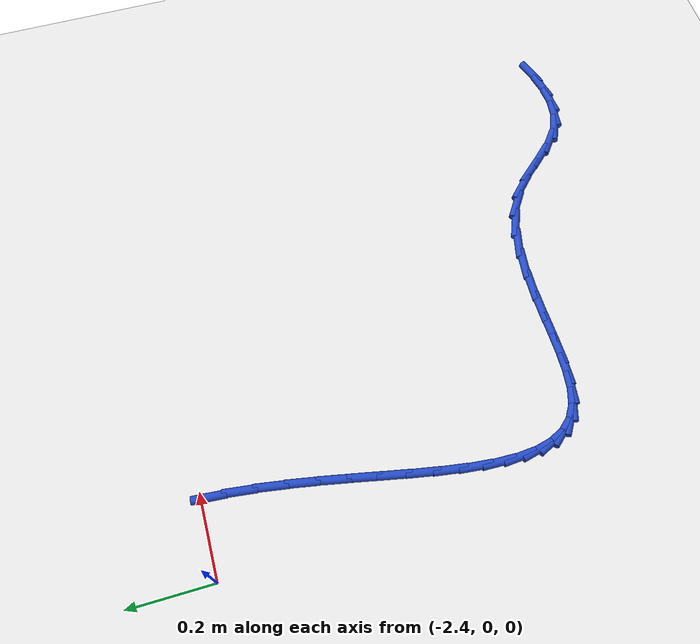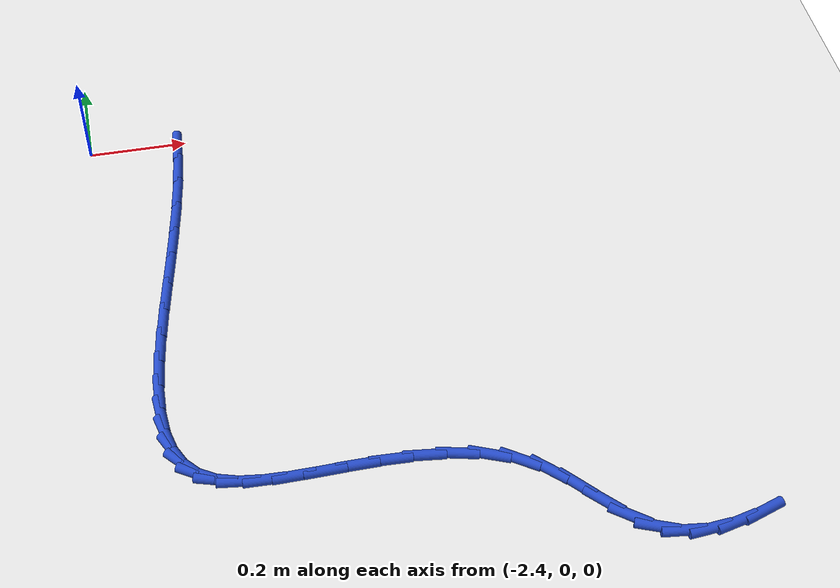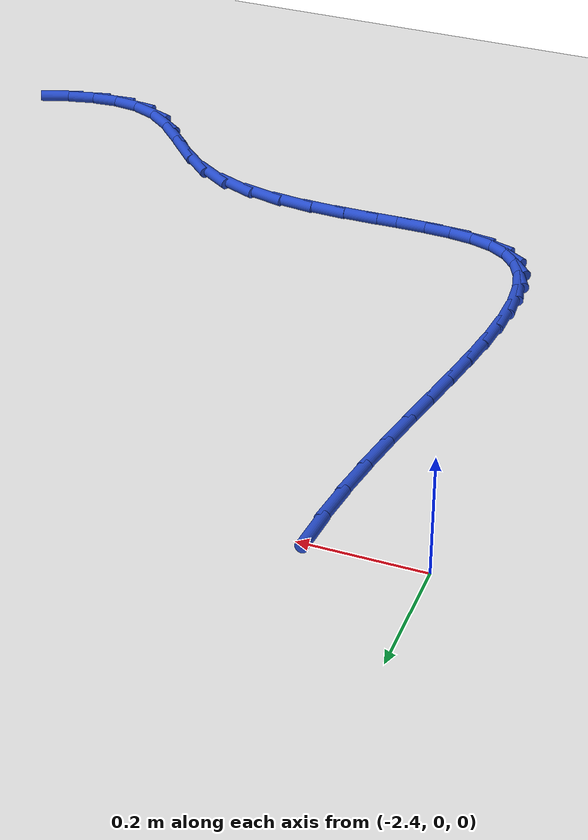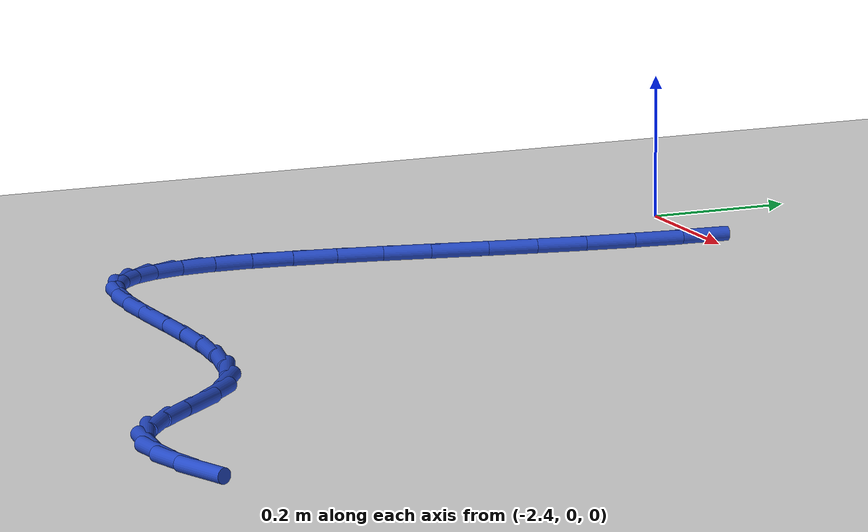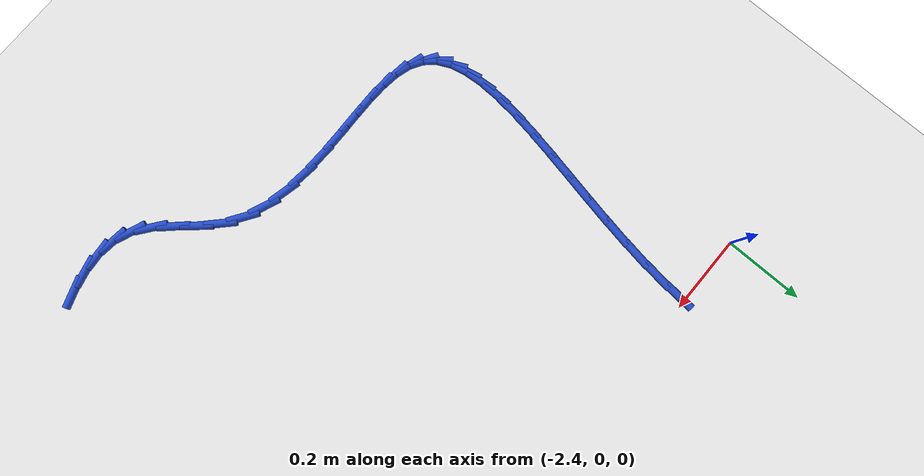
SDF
<sdf version="1.6">
 <world name="default">
  <model name="ground_plane">
   <static>1</static>
   <link name="link">
    <collision name="collision">
     <geometry><plane><normal>0 0 1</normal><size>100 100</size></plane></geometry>
     <surface><friction><ode><mu>100</mu><mu2>50</mu2></ode></friction></surface>
    </collision>
    <visual name="visual">
     <cast_shadows>0</cast_shadows>
     <geometry><plane><normal>0 0 1</normal><size>100 100</size></plane></geometry>
     <material>
      <script><uri>file://media/materials/scripts/gazebo.material</uri><name>Gazebo/WhiteGlow</name></script>
     </material>
    </visual>
   </link>
  </model>
  <model name="line">
   <link name="link_71">
    <pose>-2.2189843516203163 -0.018687217373262205 0.01 0 1.57 1.4930124723782636</pose>
    <collision name="collision">
     <geometry><cylinder><radius>0.01</radius><length>0.08</length></cylinder></geometry>
    </collision>
    <visual name="visual">
     <material>
      <script><name>Gazebo/Blue</name><uri>file://media/materials/scripts/gazebo.material</uri></script>
     </material>
     <geometry><cylinder><radius>0.01</radius><length>0.08</length></cylinder></geometry>
    </visual>
   </link>
   <link name="link_72">
    <pose>-2.2243129541585684 -0.0870542537359261 0.01 0 1.57 1.4486768519576145</pose>
    <collision name="collision">
     <geometry><cylinder><radius>0.01</radius><length>0.08</length></cylinder></geometry>
    </collision>
    <visual name="visual">
     <material>
      <script><name>Gazebo/Blue</name><uri>file://media/materials/scripts/gazebo.material</uri></script>
     </material>
     <geometry><cylinder><radius>0.01</radius><length>0.08</length></cylinder></geometry>
    </visual>
   </link>
   <link name="link_73">
    <pose>-2.232762387625798 -0.15589985807463264 0.01 0 1.57 1.4153089551539115</pose>
    <collision name="collision">
     <geometry><cylinder><radius>0.01</radius><length>0.08</length></cylinder></geometry>
    </collision>
    <visual name="visual">
     <material>
      <script><name>Gazebo/Blue</name><uri>file://media/materials/scripts/gazebo.material</uri></script>
     </material>
     <geometry><cylinder><radius>0.01</radius><length>0.08</length></cylinder></geometry>
    </visual>
   </link>
   <link name="link_74">
    <pose>-2.2435444067823624 -0.22468350794278227 0.01 0 1.57 1.391939915161894</pose>
    <collision name="collision">
     <geometry><cylinder><radius>0.01</radius><length>0.08</length></cylinder></geometry>
    </collision>
    <visual name="visual">
     <material>
      <script><name>Gazebo/Blue</name><uri>file://media/materials/scripts/gazebo.material</uri></script>
     </material>
     <geometry><cylinder><radius>0.01</radius><length>0.08</length></cylinder></geometry>
    </visual>
   </link>
   <link name="link_75">
    <pose>-2.255870766388623 -0.2928646808937789 0.01 0 1.57 1.3780691913912964</pose>
    <collision name="collision">
     <geometry><cylinder><radius>0.01</radius><length>0.08</length></cylinder></geometry>
    </collision>
    <visual name="visual">
     <material>
      <script><name>Gazebo/Blue</name><uri>file://media/materials/scripts/gazebo.material</uri></script>
     </material>
     <geometry><cylinder><radius>0.01</radius><length>0.08</length></cylinder></geometry>
    </visual>
   </link>
   <link name="link_76">
    <pose>-2.26895322120494 -0.3599028544810249 0.01 0 1.57 1.3737042416038991</pose>
    <collision name="collision">
     <geometry><cylinder><radius>0.01</radius><length>0.08</length></cylinder></geometry>
    </collision>
    <visual name="visual">
     <material>
      <script><name>Gazebo/Blue</name><uri>file://media/materials/scripts/gazebo.material</uri></script>
     </material>
     <geometry><cylinder><radius>0.01</radius><length>0.08</length></cylinder></geometry>
    </visual>
   </link>
   <link name="link_77">
    <pose>-2.2820035259916733 -0.42525750625792347 0.01 0 1.57 1.3794426664822372</pose>
    <collision name="collision">
     <geometry><cylinder><radius>0.01</radius><length>0.08</length></cylinder></geometry>
    </collision>
    <visual name="visual">
     <material>
      <script><name>Gazebo/Blue</name><uri>file://media/materials/scripts/gazebo.material</uri></script>
     </material>
     <geometry><cylinder><radius>0.01</radius><length>0.08</length></cylinder></geometry>
    </visual>
   </link>
   <link name="link_78">
    <pose>-2.2942334355091822 -0.4883881137778778 0.01 0 1.57 1.3966312217301124</pose>
    <collision name="collision">
     <geometry><cylinder><radius>0.01</radius><length>0.08</length></cylinder></geometry>
    </collision>
    <visual name="visual">
     <material>
      <script><name>Gazebo/Blue</name><uri>file://media/materials/scripts/gazebo.material</uri></script>
     </material>
     <geometry><cylinder><radius>0.01</radius><length>0.08</length></cylinder></geometry>
    </visual>
   </link>
   <link name="link_79">
    <pose>-2.3048547045178283 -0.5487541545942889 0.01 0 1.57 1.4276488623232615</pose>
    <collision name="collision">
     <geometry><cylinder><radius>0.01</radius><length>0.08</length></cylinder></geometry>
    </collision>
    <visual name="visual">
     <material>
      <script><name>Gazebo/Blue</name><uri>file://media/materials/scripts/gazebo.material</uri></script>
     </material>
     <geometry><cylinder><radius>0.01</radius><length>0.08</length></cylinder></geometry>
    </visual>
   </link>
   <link name="link_80">
    <pose>-2.3130790877779694 -0.6058151062605601 0.01 0 1.57 1.4763823838622685</pose>
    <collision name="collision">
     <geometry><cylinder><radius>0.01</radius><length>0.08</length></cylinder></geometry>
    </collision>
    <visual name="visual">
     <material>
      <script><name>Gazebo/Blue</name><uri>file://media/materials/scripts/gazebo.material</uri></script>
     </material>
     <geometry><cylinder><radius>0.01</radius><length>0.08</length></cylinder></geometry>
    </visual>
   </link>
   <link name="link_81">
    <pose>-2.3181183400499674 -0.6590304463300944 0.01 0 1.57 1.5489711347403252</pose>
    <collision name="collision">
     <geometry><cylinder><radius>0.01</radius><length>0.08</length></cylinder></geometry>
    </collision>
    <visual name="visual">
     <material>
      <script><name>Gazebo/Blue</name><uri>file://media/materials/scripts/gazebo.material</uri></script>
     </material>
     <geometry><cylinder><radius>0.01</radius><length>0.08</length></cylinder></geometry>
    </visual>
   </link>
   <link name="link_82">
    <pose>-2.319184216094182 -0.7078596523562952 0.01 0 1.57 -1.4868136749743084</pose>
    <collision name="collision">
     <geometry><cylinder><radius>0.01</radius><length>0.08</length></cylinder></geometry>
    </collision>
    <visual name="visual">
     <material>
      <script><name>Gazebo/Blue</name><uri>file://media/materials/scripts/gazebo.material</uri></script>
     </material>
     <geometry><cylinder><radius>0.01</radius><length>0.08</length></cylinder></geometry>
    </visual>
   </link>
   <link name="link_83">
    <pose>-2.3154884706709735 -0.7517622018925638 0.01 0 1.57 -1.3347317657261517</pose>
    <collision name="collision">
     <geometry><cylinder><radius>0.01</radius><length>0.08</length></cylinder></geometry>
    </collision>
    <visual name="visual">
     <material>
      <script><name>Gazebo/Blue</name><uri>file://media/materials/scripts/gazebo.material</uri></script>
     </material>
     <geometry><cylinder><radius>0.01</radius><length>0.08</length></cylinder></geometry>
    </visual>
   </link>
   <link name="link_84">
    <pose>-2.3062428585407 -0.7901975724923032 0.01 0 1.57 -1.122814215778279</pose>
    <collision name="collision">
     <geometry><cylinder><radius>0.01</radius><length>0.08</length></cylinder></geometry>
    </collision>
    <visual name="visual">
     <material>
      <script><name>Gazebo/Blue</name><uri>file://media/materials/scripts/gazebo.material</uri></script>
     </material>
     <geometry><cylinder><radius>0.01</radius><length>0.08</length></cylinder></geometry>
    </visual>
   </link>
   <link name="link_85">
    <pose>-2.290659134463724 -0.8226252417089164 0.01 0 1.57 -0.850533203535557</pose>
    <collision name="collision">
     <geometry><cylinder><radius>0.01</radius><length>0.08</length></cylinder></geometry>
    </collision>
    <visual name="visual">
     <material>
      <script><name>Gazebo/Blue</name><uri>file://media/materials/scripts/gazebo.material</uri></script>
     </material>
     <geometry><cylinder><radius>0.01</radius><length>0.08</length></cylinder></geometry>
    </visual>
   </link>
   <link name="link_86">
    <pose>-2.267949053200404 -0.8485046870958062 0.01 0 1.57 -0.5503453597935779</pose>
    <collision name="collision">
     <geometry><cylinder><radius>0.01</radius><length>0.08</length></cylinder></geometry>
    </collision>
    <visual name="visual">
     <material>
      <script><name>Gazebo/Blue</name><uri>file://media/materials/scripts/gazebo.material</uri></script>
     </material>
     <geometry><cylinder><radius>0.01</radius><length>0.08</length></cylinder></geometry>
    </visual>
   </link>
   <link name="link_87">
    <pose>-2.237324375297296 -0.8672953920858765 0.01 0 1.57 -0.2888702083806845</pose>
    <collision name="collision">
     <geometry><cylinder><radius>0.01</radius><length>0.08</length></cylinder></geometry>
    </collision>
    <visual name="visual">
     <material>
      <script><name>Gazebo/Blue</name><uri>file://media/materials/scripts/gazebo.material</uri></script>
     </material>
     <geometry><cylinder><radius>0.01</radius><length>0.08</length></cylinder></geometry>
    </visual>
   </link>
   <link name="link_88">
    <pose>-2.1983973862531134 -0.8788638237225642 0.01 0 1.57 -0.12343449581295132</pose>
    <collision name="collision">
     <geometry><cylinder><radius>0.01</radius><length>0.08</length></cylinder></geometry>
    </collision>
    <visual name="visual">
     <material>
      <script><name>Gazebo/Blue</name><uri>file://media/materials/scripts/gazebo.material</uri></script>
     </material>
     <geometry><cylinder><radius>0.01</radius><length>0.08</length></cylinder></geometry>
    </visual>
   </link>
   <link name="link_89">
    <pose>-2.152266956518886 -0.8845870059022592 0.01 0 1.57 -0.03092737565999307</pose>
    <collision name="collision">
     <geometry><cylinder><radius>0.01</radius><length>0.08</length></cylinder></geometry>
    </collision>
    <visual name="visual">
     <material>
      <script><name>Gazebo/Blue</name><uri>file://media/materials/scripts/gazebo.material</uri></script>
     </material>
     <geometry><cylinder><radius>0.01</radius><length>0.08</length></cylinder></geometry>
    </visual>
   </link>
   <link name="link_90">
    <pose>-2.100376778408455 -0.8861923448033113 0.01 0 1.57 0.013967261046134263</pose>
    <collision name="collision">
     <geometry><cylinder><radius>0.01</radius><length>0.08</length></cylinder></geometry>
    </collision>
    <visual name="visual">
     <material>
      <script><name>Gazebo/Blue</name><uri>file://media/materials/scripts/gazebo.material</uri></script>
     </material>
     <geometry><cylinder><radius>0.01</radius><length>0.08</length></cylinder></geometry>
    </visual>
   </link>
   <link name="link_91">
    <pose>-2.0441705442356612 -0.8854072466040703 0.01 0 1.57 0.02450699996993845</pose>
    <collision name="collision">
     <geometry><cylinder><radius>0.01</radius><length>0.08</length></cylinder></geometry>
    </collision>
    <visual name="visual">
     <material>
      <script><name>Gazebo/Blue</name><uri>file://media/materials/scripts/gazebo.material</uri></script>
     </material>
     <geometry><cylinder><radius>0.01</radius><length>0.08</length></cylinder></geometry>
    </visual>
   </link>
   <link name="link_92">
    <pose>-1.9850919463143513 -0.8839591174828861 0.01 0 1.57 0.006342191996972328</pose>
    <collision name="collision">
     <geometry><cylinder><radius>0.01</radius><length>0.08</length></cylinder></geometry>
    </collision>
    <visual name="visual">
     <material>
      <script><name>Gazebo/Blue</name><uri>file://media/materials/scripts/gazebo.material</uri></script>
     </material>
     <geometry><cylinder><radius>0.01</radius><length>0.08</length></cylinder></geometry>
    </visual>
   </link>
   <link name="link_93">
    <pose>-1.9245846769583659 -0.8835753636181092 0.01 0 1.57 -0.03978620248419387</pose>
    <collision name="collision">
     <geometry><cylinder><radius>0.01</radius><length>0.08</length></cylinder></geometry>
    </collision>
    <visual name="visual">
     <material>
      <script><name>Gazebo/Blue</name><uri>file://media/materials/scripts/gazebo.material</uri></script>
     </material>
     <geometry><cylinder><radius>0.01</radius><length>0.08</length></cylinder></geometry>
    </visual>
   </link>
   <link name="link_94">
    <pose>-1.8640924284815474 -0.885983391188089 0.01 0 1.57 -0.11680954552356251</pose>
    <collision name="collision">
     <geometry><cylinder><radius>0.01</radius><length>0.08</length></cylinder></geometry>
    </collision>
    <visual name="visual">
     <material>
      <script><name>Gazebo/Blue</name><uri>file://media/materials/scripts/gazebo.material</uri></script>
     </material>
     <geometry><cylinder><radius>0.01</radius><length>0.08</length></cylinder></geometry>
    </visual>
   </link>
   <link name="link_95">
    <pose>-1.8050588931977372 -0.8929106063711756 0.01 0 1.57 -0.230524818899885</pose>
    <collision name="collision">
     <geometry><cylinder><radius>0.01</radius><length>0.08</length></cylinder></geometry>
    </collision>
    <visual name="visual">
     <material>
      <script><name>Gazebo/Blue</name><uri>file://media/materials/scripts/gazebo.material</uri></script>
     </material>
     <geometry><cylinder><radius>0.01</radius><length>0.08</length></cylinder></geometry>
    </visual>
   </link>
   <link name="link_96">
    <pose>-1.7489277634207807 -0.9060844153457189 0.01 0 1.57 -0.3877068874509017</pose>
    <collision name="collision">
     <geometry><cylinder><radius>0.01</radius><length>0.08</length></cylinder></geometry>
    </collision>
    <visual name="visual">
     <material>
      <script><name>Gazebo/Blue</name><uri>file://media/materials/scripts/gazebo.material</uri></script>
     </material>
     <geometry><cylinder><radius>0.01</radius><length>0.08</length></cylinder></geometry>
    </visual>
   </link>
   <link name="link_97">
    <pose>-1.6971427314645187 -0.927232224290069 0.01 0 1.57 -0.5895657920638186</pose>
    <collision name="collision">
     <geometry><cylinder><radius>0.01</radius><length>0.08</length></cylinder></geometry>
    </collision>
    <visual name="visual">
     <material>
      <script><name>Gazebo/Blue</name><uri>file://media/materials/scripts/gazebo.material</uri></script>
     </material>
     <geometry><cylinder><radius>0.01</radius><length>0.08</length></cylinder></geometry>
    </visual>
   </link>
   <link name="link_98">
    <pose>-1.6511152857938385 -0.9580212237366742 0.01 0 1.57 -0.7688654607259201</pose>
    <collision name="collision">
     <geometry><cylinder><radius>0.01</radius><length>0.08</length></cylinder></geometry>
    </collision>
    <visual name="visual">
     <material>
      <script><name>Gazebo/Blue</name><uri>file://media/materials/scripts/gazebo.material</uri></script>
     </material>
     <geometry><cylinder><radius>0.01</radius><length>0.08</length></cylinder></geometry>
    </visual>
   </link>
   <link name="link_99">
    <pose>-1.6106698079550097 -0.9971509878827792 0.01 0 1.57 -0.8432492629498087</pose>
    <collision name="collision">
     <geometry><cylinder><radius>0.01</radius><length>0.08</length></cylinder></geometry>
    </collision>
    <visual name="visual">
     <material>
      <script><name>Gazebo/Blue</name><uri>file://media/materials/scripts/gazebo.material</uri></script>
     </material>
     <geometry><cylinder><radius>0.01</radius><length>0.08</length></cylinder></geometry>
    </visual>
   </link>
   <link name="link_100">
    <pose>-1.5733509153279581 -1.0390583249448975 0.01 0 1.57 -0.8114136480187439</pose>
    <collision name="collision">
     <geometry><cylinder><radius>0.01</radius><length>0.08</length></cylinder></geometry>
    </collision>
    <visual name="visual">
     <material>
      <script><name>Gazebo/Blue</name><uri>file://media/materials/scripts/gazebo.material</uri></script>
     </material>
     <geometry><cylinder><radius>0.01</radius><length>0.08</length></cylinder></geometry>
    </visual>
   </link>
   <link name="link_101">
    <pose>-1.5365267689119004 -1.0778501001270668 0.01 0 1.57 -0.6528459598916048</pose>
    <collision name="collision">
     <geometry><cylinder><radius>0.01</radius><length>0.08</length></cylinder></geometry>
    </collision>
    <visual name="visual">
     <material>
      <script><name>Gazebo/Blue</name><uri>file://media/materials/scripts/gazebo.material</uri></script>
     </material>
     <geometry><cylinder><radius>0.01</radius><length>0.08</length></cylinder></geometry>
    </visual>
   </link>
   <link name="link_102">
    <pose>-1.4975688717427762 -1.1076413918162966 0.01 0 1.57 -0.37797686281688697</pose>
    <collision name="collision">
     <geometry><cylinder><radius>0.01</radius><length>0.08</length></cylinder></geometry>
    </collision>
    <visual name="visual">
     <material>
      <script><name>Gazebo/Blue</name><uri>file://media/materials/scripts/gazebo.material</uri></script>
     </material>
     <geometry><cylinder><radius>0.01</radius><length>0.08</length></cylinder></geometry>
    </visual>
   </link>
   <link name="link_103">
    <pose>-1.4547083953048225 -1.1246599464647504 0.01 0 1.57 -0.11519292361384192</pose>
    <collision name="collision">
     <geometry><cylinder><radius>0.01</radius><length>0.08</length></cylinder></geometry>
    </collision>
    <visual name="visual">
     <material>
      <script><name>Gazebo/Blue</name><uri>file://media/materials/scripts/gazebo.material</uri></script>
     </material>
     <geometry><cylinder><radius>0.01</radius><length>0.08</length></cylinder></geometry>
    </visual>
   </link>
   <link name="link_104">
    <pose>-1.4081746995394677 -1.1300441350217785 0.01 0 1.57 0.08862499889243677</pose>
    <collision name="collision">
     <geometry><cylinder><radius>0.01</radius><length>0.08</length></cylinder></geometry>
    </collision>
    <visual name="visual">
     <material>
      <script><name>Gazebo/Blue</name><uri>file://media/materials/scripts/gazebo.material</uri></script>
     </material>
     <geometry><cylinder><radius>0.01</radius><length>0.08</length></cylinder></geometry>
    </visual>
   </link>
   <link name="link_105">
    <pose>-1.3584803876949894 -1.1256284096878588 0.01 0 1.57 0.23227327961364172</pose>
    <collision name="collision">
     <geometry><cylinder><radius>0.01</radius><length>0.08</length></cylinder></geometry>
    </collision>
    <visual name="visual">
     <material>
      <script><name>Gazebo/Blue</name><uri>file://media/materials/scripts/gazebo.material</uri></script>
     </material>
     <geometry><cylinder><radius>0.01</radius><length>0.08</length></cylinder></geometry>
    </visual>
   </link>
   <link name="link_106">
    <pose>-1.3061380630196653 -1.1132472226634733 0.01 0 1.57 0.3275701207929217</pose>
    <collision name="collision">
     <geometry><cylinder><radius>0.01</radius><length>0.08</length></cylinder></geometry>
    </collision>
    <visual name="visual">
     <material>
      <script><name>Gazebo/Blue</name><uri>file://media/materials/scripts/gazebo.material</uri></script>
     </material>
     <geometry><cylinder><radius>0.01</radius><length>0.08</length></cylinder></geometry>
    </visual>
   </link>
  </model>
 </world>
</sdf>
